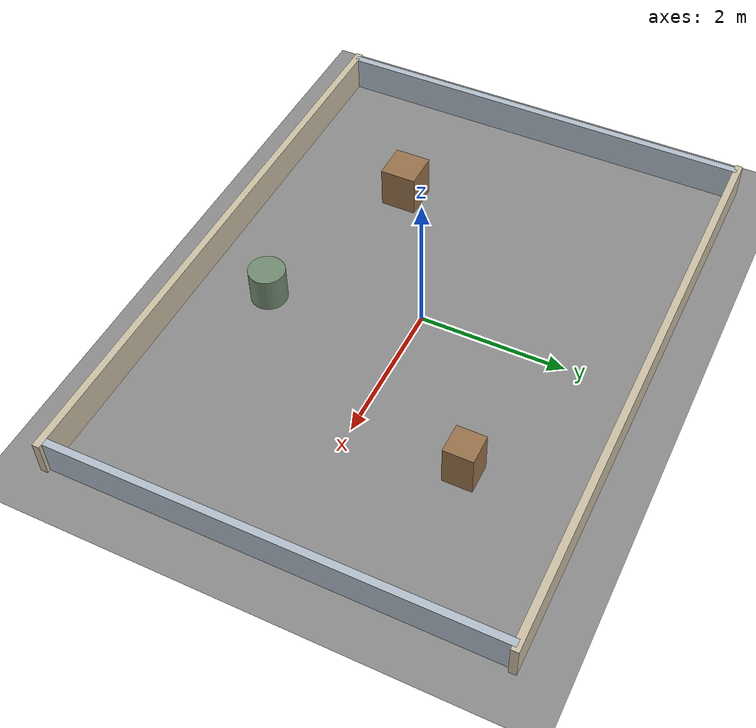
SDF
<?xml version="1.0" ?>
<!-- BARQ flat-ground world (Gazebo Fortress). Fully offline: no Fuel includes. -->
<sdf version="1.8">
  <world name="barq_world">
    <physics name="1ms" type="ignored">
      <max_step_size>0.001</max_step_size>
      <real_time_factor>1.0</real_time_factor>
    </physics>

    <plugin filename="ignition-gazebo-physics-system"
            name="ignition::gazebo::systems::Physics"/>
    <plugin filename="ignition-gazebo-user-commands-system"
            name="ignition::gazebo::systems::UserCommands"/>
    <plugin filename="ignition-gazebo-scene-broadcaster-system"
            name="ignition::gazebo::systems::SceneBroadcaster"/>
    <plugin filename="ignition-gazebo-contact-system"
            name="ignition::gazebo::systems::Contact"/>
    <plugin filename="ignition-gazebo-imu-system"
            name="ignition::gazebo::systems::Imu"/>
    <plugin filename="ignition-gazebo-sensors-system"
            name="ignition::gazebo::systems::Sensors">
      <render_engine>ogre2</render_engine>
    </plugin>

    <light type="directional" name="sun">
      <cast_shadows>true</cast_shadows>
      <pose>0 0 10 0 0 0</pose>
      <diffuse>0.8 0.8 0.8 1</diffuse>
      <specular>0.2 0.2 0.2 1</specular>
      <direction>-0.5 0.1 -0.9</direction>
    </light>

    <!-- 8x6 m room + pillars: features for the 2D lidar / SLAM (walls taller than the
         0.21 m scan plane). -->
    <model name="room">
      <static>true</static>
      <link name="walls">
        <collision name="n"><pose>0 3 0.25 0 0 0</pose>
          <geometry><box><size>8.2 0.1 0.5</size></box></geometry></collision>
        <visual name="nv"><pose>0 3 0.25 0 0 0</pose>
          <geometry><box><size>8.2 0.1 0.5</size></box></geometry>
          <material><ambient>0.8 0.75 0.65 1</ambient><diffuse>0.8 0.75 0.65 1</diffuse></material></visual>
        <collision name="s"><pose>0 -3 0.25 0 0 0</pose>
          <geometry><box><size>8.2 0.1 0.5</size></box></geometry></collision>
        <visual name="sv"><pose>0 -3 0.25 0 0 0</pose>
          <geometry><box><size>8.2 0.1 0.5</size></box></geometry>
          <material><ambient>0.8 0.75 0.65 1</ambient><diffuse>0.8 0.75 0.65 1</diffuse></material></visual>
        <collision name="e"><pose>4 0 0.25 0 0 0</pose>
          <geometry><box><size>0.1 6 0.5</size></box></geometry></collision>
        <visual name="ev"><pose>4 0 0.25 0 0 0</pose>
          <geometry><box><size>0.1 6 0.5</size></box></geometry>
          <material><ambient>0.7 0.75 0.8 1</ambient><diffuse>0.7 0.75 0.8 1</diffuse></material></visual>
        <collision name="w"><pose>-4 0 0.25 0 0 0</pose>
          <geometry><box><size>0.1 6 0.5</size></box></geometry></collision>
        <visual name="wv"><pose>-4 0 0.25 0 0 0</pose>
          <geometry><box><size>0.1 6 0.5</size></box></geometry>
          <material><ambient>0.7 0.75 0.8 1</ambient><diffuse>0.7 0.75 0.8 1</diffuse></material></visual>
        <collision name="p1"><pose>2 1.5 0.3 0 0 0</pose>
          <geometry><box><size>0.4 0.4 0.6</size></box></geometry></collision>
        <visual name="p1v"><pose>2 1.5 0.3 0 0 0</pose>
          <geometry><box><size>0.4 0.4 0.6</size></box></geometry>
          <material><ambient>0.6 0.45 0.3 1</ambient><diffuse>0.6 0.45 0.3 1</diffuse></material></visual>
        <collision name="p2"><pose>-2 -1.2 0.3 0 0 0</pose>
          <geometry><box><size>0.5 0.5 0.6</size></box></geometry></collision>
        <visual name="p2v"><pose>-2 -1.2 0.3 0 0 0</pose>
          <geometry><box><size>0.5 0.5 0.6</size></box></geometry>
          <material><ambient>0.6 0.45 0.3 1</ambient><diffuse>0.6 0.45 0.3 1</diffuse></material></visual>
        <collision name="p3"><pose>0.5 -2 0.25 0 0 0</pose>
          <geometry><cylinder><radius>0.25</radius><length>0.5</length></cylinder></geometry></collision>
        <visual name="p3v"><pose>0.5 -2 0.25 0 0 0</pose>
          <geometry><cylinder><radius>0.25</radius><length>0.5</length></cylinder></geometry>
          <material><ambient>0.45 0.55 0.45 1</ambient><diffuse>0.45 0.55 0.45 1</diffuse></material></visual>
      </link>
    </model>

    <model name="ground_plane">
      <static>true</static>
      <link name="link">
        <collision name="collision">
          <geometry><plane><normal>0 0 1</normal><size>20 20</size></plane></geometry>
          <surface>
            <friction><ode><mu>1.0</mu><mu2>1.0</mu2></ode></friction>
          </surface>
        </collision>
        <visual name="visual">
          <geometry><plane><normal>0 0 1</normal><size>20 20</size></plane></geometry>
          <material>
            <ambient>0.55 0.55 0.55 1</ambient>
            <diffuse>0.55 0.55 0.55 1</diffuse>
          </material>
        </visual>
      </link>
    </model>
  </world>
</sdf>
